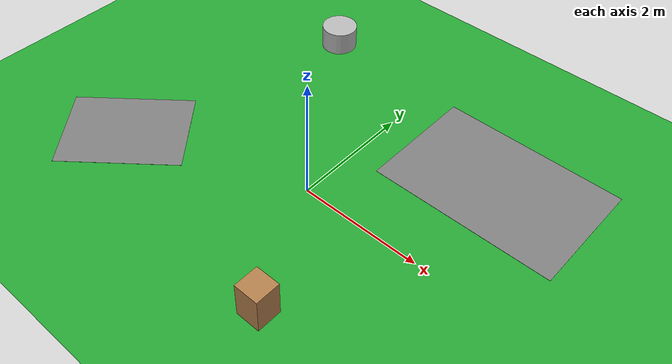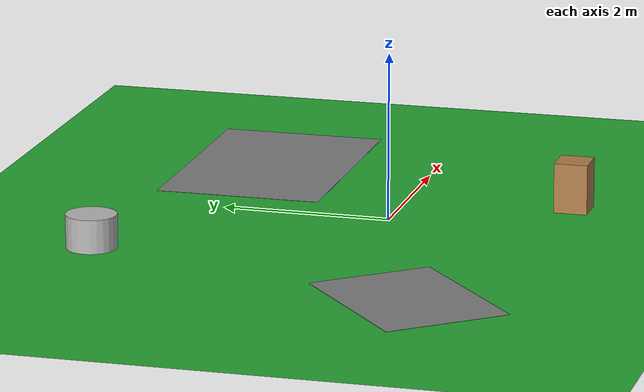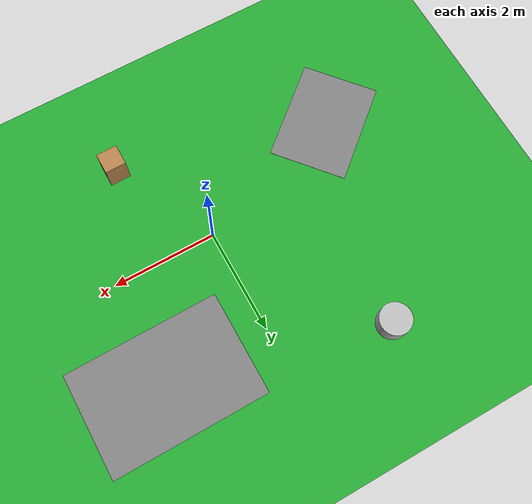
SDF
<sdf version='1.11'>
  <world name='irrigation_world'>
    <physics type='ode'>
      <max_step_size>0.001</max_step_size>
      <real_time_factor>1</real_time_factor>
      <real_time_update_rate>1000</real_time_update_rate>
    </physics>
    <model name='ground_plane'>
      <static>true</static>
      <link name='link'>
        <collision name='collision'>
          <geometry>
            <plane>
              <normal>0 0 1</normal>
              <size>100 100</size>
            </plane>
          </geometry>
          <surface>
            <friction>
              <ode>
                <mu>100</mu>
                <mu2>50</mu2>
              </ode>
            </friction>
          </surface>
        </collision>
        <visual name='visual'>
          <cast_shadows>false</cast_shadows>
          <geometry>
            <plane>
              <normal>0 0 1</normal>
              <size>100 100</size>
            </plane>
          </geometry>
          <material>
            <script>
              <uri>file://media/materials/scripts/gazebo.material</uri>
              <name>Gazebo/Green</name>
            </script>
          </material>
        </visual>
      </link>
    </model>
    <model name='dry_area_1'>
      <static>true</static>
      <pose>2 2 0.001 0 0 0</pose>
      <link name='link'>
        <visual name='visual'>
          <cast_shadows>false</cast_shadows>
          <geometry>
            <box>
              <size>3 2 0.002</size>
            </box>
          </geometry>
          <material>
            <ambient>0.5 0.5 0.5 1</ambient>
            <diffuse>0.5 0.5 0.5 1</diffuse>
            <specular>0.100000001 0.100000001 0.100000001 1</specular>
          </material>
        </visual>
      </link>
    </model>
    <model name='dry_area_2'>
      <static>true</static>
      <pose>-3 -1 0.001 0 0 0.69999999999999996</pose>
      <link name='link'>
        <visual name='visual'>
          <cast_shadows>false</cast_shadows>
          <geometry>
            <box>
              <size>2 1.5 0.002</size>
            </box>
          </geometry>
          <material>
            <ambient>0.5 0.5 0.5 1</ambient>
            <diffuse>0.5 0.5 0.5 1</diffuse>
            <specular>0.100000001 0.100000001 0.100000001 1</specular>
          </material>
        </visual>
      </link>
    </model>
    <model name='obstacle_1'>
      <static>true</static>
      <pose>1 -2 0.29999999999999999 0 0 0</pose>
      <link name='link'>
        <collision name='collision'>
          <geometry>
            <box>
              <size>0.40000000000000002 0.40000000000000002 0.59999999999999998</size>
            </box>
          </geometry>
        </collision>
        <visual name='visual'>
          <geometry>
            <box>
              <size>0.40000000000000002 0.40000000000000002 0.59999999999999998</size>
            </box>
          </geometry>
          <material>
            <script>
              <uri>file://media/materials/scripts/gazebo.material</uri>
              <name>Gazebo/Wood</name>
            </script>
          </material>
        </visual>
      </link>
    </model>
    <model name='obstacle_2'>
      <static>true</static>
      <pose>-2 3 0.20000000000000001 0 0 0</pose>
      <link name='link'>
        <collision name='collision'>
          <geometry>
            <cylinder>
              <radius>0.29999999999999999</radius>
              <length>0.40000000000000002</length>
            </cylinder>
          </geometry>
        </collision>
        <visual name='visual'>
          <geometry>
            <cylinder>
              <radius>0.29999999999999999</radius>
              <length>0.40000000000000002</length>
            </cylinder>
          </geometry>
          <material>
            <script>
              <uri>file://media/materials/scripts/gazebo.material</uri>
              <name>Gazebo/Stone</name>
            </script>
          </material>
        </visual>
      </link>
    </model>
    <gravity>0 0 -9.8000000000000007</gravity>
    <magnetic_field>5.5644999999999998e-06 2.2875799999999999e-05 -4.2388400000000002e-05</magnetic_field>
    <atmosphere type='adiabatic'/>
    <scene>
      <ambient>0.400000006 0.400000006 0.400000006 1</ambient>
      <background>0.699999988 0.699999988 0.699999988 1</background>
      <shadows>true</shadows>
    </scene>
  </world>
</sdf>
